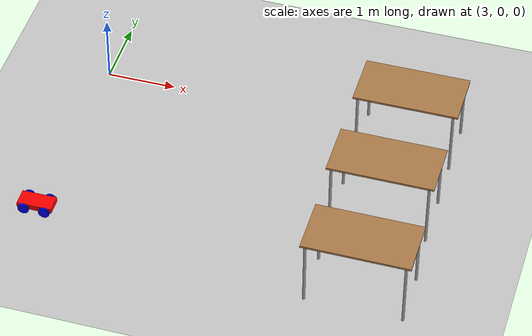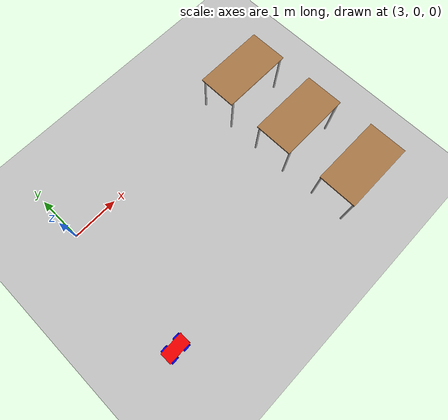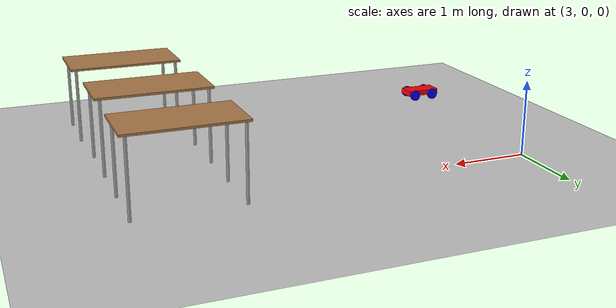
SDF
<sdf version="1.6">
 <world name="default">
  <model name="ground_plane">
   <static>1</static>
   <link name="link">
    <collision name="collision">
     <geometry><plane><normal>0 0 1</normal><size>100 100</size></plane></geometry>
     <surface><friction><ode><mu>100</mu><mu2>50</mu2></ode></friction></surface>
    </collision>
    <visual name="visual">
     <cast_shadows>0</cast_shadows>
     <geometry><plane><normal>0 0 1</normal><size>100 100</size></plane></geometry>
     <material>
      <script><uri>file://media/materials/scripts/gazebo.material</uri><name>Gazebo/Grey</name></script>
     </material>
    </visual>
   </link>
  </model>
  <model name="table_2">
   <static>1</static>
   <link name="link">
    <collision name="surface">
     <pose>0 0 1 0 -0 0</pose>
     <geometry><box><size>1.5 0.8 0.03</size></box></geometry>
     <surface><friction><ode><mu>0.6</mu><mu2>0.6</mu2></ode></friction></surface>
    </collision>
    <visual name="visual1">
     <pose>0 0 1 0 -0 0</pose>
     <geometry><box><size>1.5 0.8 0.03</size></box></geometry>
     <material>
      <script><uri>file://media/materials/scripts/gazebo.material</uri><name>Gazebo/Wood</name></script>
     </material>
    </visual>
    <collision name="front_left_leg">
     <pose>0.68 0.38 0.5 0 -0 0</pose>
     <geometry><cylinder><radius>0.02</radius><length>1</length></cylinder></geometry>
    </collision>
    <visual name="front_left_leg">
     <pose>0.68 0.38 0.5 0 -0 0</pose>
     <geometry><cylinder><radius>0.02</radius><length>1</length></cylinder></geometry>
     <material>
      <script><uri>file://media/materials/scripts/gazebo.material</uri><name>Gazebo/Grey</name></script>
     </material>
    </visual>
    <collision name="front_right_leg">
     <pose>0.68 -0.38 0.5 0 -0 0</pose>
     <geometry><cylinder><radius>0.02</radius><length>1</length></cylinder></geometry>
    </collision>
    <visual name="front_right_leg">
     <pose>0.68 -0.38 0.5 0 -0 0</pose>
     <geometry><cylinder><radius>0.02</radius><length>1</length></cylinder></geometry>
     <material>
      <script><uri>file://media/materials/scripts/gazebo.material</uri><name>Gazebo/Grey</name></script>
     </material>
    </visual>
    <collision name="back_right_leg">
     <pose>-0.68 -0.38 0.5 0 -0 0</pose>
     <geometry><cylinder><radius>0.02</radius><length>1</length></cylinder></geometry>
    </collision>
    <visual name="back_right_leg">
     <pose>-0.68 -0.38 0.5 0 -0 0</pose>
     <geometry><cylinder><radius>0.02</radius><length>1</length></cylinder></geometry>
     <material>
      <script><uri>file://media/materials/scripts/gazebo.material</uri><name>Gazebo/Grey</name></script>
     </material>
    </visual>
    <collision name="back_left_leg">
     <pose>-0.68 0.38 0.5 0 -0 0</pose>
     <geometry><cylinder><radius>0.02</radius><length>1</length></cylinder></geometry>
    </collision>
    <visual name="back_left_leg">
     <pose>-0.68 0.38 0.5 0 -0 0</pose>
     <geometry><cylinder><radius>0.02</radius><length>1</length></cylinder></geometry>
     <material>
      <script><uri>file://media/materials/scripts/gazebo.material</uri><name>Gazebo/Grey</name></script>
     </material>
    </visual>
   </link>
   <pose>7.5511 -0.140414 0 0 -0 0</pose>
  </model>
  <model name="mybot_1">
   <link name="link_0">
    <pose>0 0 0.12 0 -0 0</pose>
    <inertial>
     <mass>1</mass>
     <inertia>
      <ixx>0.166667</ixx>
      <ixy>0</ixy>
      <ixz>0</ixz>
      <iyy>0.166667</iyy>
      <iyz>0</iyz>
      <izz>0.166667</izz>
     </inertia>
    </inertial>
    <visual name="visual">
     <geometry><box><size>0.5 0.25 0.08</size></box></geometry>
     <material>
      <lighting>1</lighting>
      <script><uri>file://media/materials/scripts/gazebo.material</uri><name>Gazebo/Grey</name></script>
      <shader type="pixel"><normal_map>__default__</normal_map></shader>
      <ambient>1 0 0 1</ambient>
      <diffuse>0.7 0.7 0.7 1</diffuse>
      <specular>0.01 0.01 0.01 1</specular>
      <emissive>0 0 0 1</emissive>
     </material>
    </visual>
    <collision name="collision">
     <geometry><box><size>0.5 0.25 0.08</size></box></geometry>
     <surface>
      <friction>
       <ode><mu>1</mu><mu2>1</mu2><fdir1>0 0 0</fdir1><slip1>0</slip1><slip2>0</slip2></ode>
       <torsional>
        <coefficient>1</coefficient>
        <patch_radius>0</patch_radius>
        <surface_radius>0</surface_radius>
        <use_patch_radius>1</use_patch_radius>
        <ode><slip>0</slip></ode>
       </torsional>
      </friction>
      <bounce><restitution_coefficient>0</restitution_coefficient><threshold>1e+06</threshold></bounce>
      <contact>
       <collide_without_contact>0</collide_without_contact>
       <collide_without_contact_bitmask>1</collide_without_contact_bitmask>
       <collide_bitmask>1</collide_bitmask>
       <ode>
        <soft_cfm>0</soft_cfm>
        <soft_erp>0.2</soft_erp>
        <kp>1e+13</kp>
        <kd>1</kd>
        <max_vel>0.01</max_vel>
        <min_depth>0</min_depth>
       </ode>
       <bullet>
        <split_impulse>1</split_impulse>
        <split_impulse_penetration_threshold>-0.01</split_impulse_penetration_threshold>
        <soft_cfm>0</soft_cfm>
        <soft_erp>0.2</soft_erp>
        <kp>1e+13</kp>
        <kd>1</kd>
       </bullet>
      </contact>
     </surface>
    </collision>
   </link>
   <link name="link_1_clone">
    <pose>0.15 0.14 0.09 1.571 -0 0</pose>
    <inertial>
     <mass>1</mass>
     <inertia><ixx>0.145833</ixx><ixy>0</ixy><ixz>0</ixz><iyy>0.145833</iyy><iyz>0</iyz><izz>0.125</izz></inertia>
    </inertial>
    <visual name="visual">
     <geometry><cylinder><radius>0.08</radius><length>0.03</length></cylinder></geometry>
     <material>
      <lighting>1</lighting>
      <script><uri>file://media/materials/scripts/gazebo.material</uri><name>Gazebo/Grey</name></script>
      <shader type="pixel"><normal_map>__default__</normal_map></shader>
      <ambient>0 0 1 1</ambient>
      <diffuse>0.7 0.7 0.7 1</diffuse>
      <specular>0.01 0.01 0.01 1</specular>
      <emissive>0 0 0 1</emissive>
     </material>
    </visual>
    <collision name="collision">
     <geometry><cylinder><radius>0.08</radius><length>0.03</length></cylinder></geometry>
     <surface>
      <friction>
       <ode><mu>1</mu><mu2>1</mu2><fdir1>0 0 0</fdir1><slip1>0</slip1><slip2>0</slip2></ode>
       <torsional>
        <coefficient>1</coefficient>
        <patch_radius>0</patch_radius>
        <surface_radius>0</surface_radius>
        <use_patch_radius>1</use_patch_radius>
        <ode><slip>0</slip></ode>
       </torsional>
      </friction>
      <bounce><restitution_coefficient>0</restitution_coefficient><threshold>1e+06</threshold></bounce>
      <contact>
       <collide_without_contact>0</collide_without_contact>
       <collide_without_contact_bitmask>1</collide_without_contact_bitmask>
       <collide_bitmask>1</collide_bitmask>
       <ode>
        <soft_cfm>0</soft_cfm>
        <soft_erp>0.2</soft_erp>
        <kp>1e+13</kp>
        <kd>1</kd>
        <max_vel>0.01</max_vel>
        <min_depth>0</min_depth>
       </ode>
       <bullet>
        <split_impulse>1</split_impulse>
        <split_impulse_penetration_threshold>-0.01</split_impulse_penetration_threshold>
        <soft_cfm>0</soft_cfm>
        <soft_erp>0.2</soft_erp>
        <kp>1e+13</kp>
        <kd>1</kd>
       </bullet>
      </contact>
     </surface>
    </collision>
   </link>
   <link name="link_1_clone_clone">
    <pose>-0.15 0.14 0.09 1.571 -0 0</pose>
    <inertial>
     <mass>1</mass>
     <inertia><ixx>0.145833</ixx><ixy>0</ixy><ixz>0</ixz><iyy>0.145833</iyy><iyz>0</iyz><izz>0.125</izz></inertia>
    </inertial>
    <visual name="visual">
     <geometry><cylinder><radius>0.08</radius><length>0.03</length></cylinder></geometry>
     <material>
      <lighting>1</lighting>
      <script><uri>file://media/materials/scripts/gazebo.material</uri><name>Gazebo/Grey</name></script>
      <shader type="pixel"><normal_map>__default__</normal_map></shader>
      <ambient>0 0 1 1</ambient>
      <diffuse>0.7 0.7 0.7 1</diffuse>
      <specular>0.01 0.01 0.01 1</specular>
      <emissive>0 0 0 1</emissive>
     </material>
    </visual>
    <collision name="collision">
     <geometry><cylinder><radius>0.08</radius><length>0.03</length></cylinder></geometry>
     <surface>
      <friction>
       <ode><mu>1</mu><mu2>1</mu2><fdir1>0 0 0</fdir1><slip1>0</slip1><slip2>0</slip2></ode>
       <torsional>
        <coefficient>1</coefficient>
        <patch_radius>0</patch_radius>
        <surface_radius>0</surface_radius>
        <use_patch_radius>1</use_patch_radius>
        <ode><slip>0</slip></ode>
       </torsional>
      </friction>
      <bounce><restitution_coefficient>0</restitution_coefficient><threshold>1e+06</threshold></bounce>
      <contact>
       <collide_without_contact>0</collide_without_contact>
       <collide_without_contact_bitmask>1</collide_without_contact_bitmask>
       <collide_bitmask>1</collide_bitmask>
       <ode>
        <soft_cfm>0</soft_cfm>
        <soft_erp>0.2</soft_erp>
        <kp>1e+13</kp>
        <kd>1</kd>
        <max_vel>0.01</max_vel>
        <min_depth>0</min_depth>
       </ode>
       <bullet>
        <split_impulse>1</split_impulse>
        <split_impulse_penetration_threshold>-0.01</split_impulse_penetration_threshold>
        <soft_cfm>0</soft_cfm>
        <soft_erp>0.2</soft_erp>
        <kp>1e+13</kp>
        <kd>1</kd>
       </bullet>
      </contact>
     </surface>
    </collision>
   </link>
   <link name="link_1_clone_clone_0">
    <pose>-0.15 -0.14 0.09 1.571 -0 0</pose>
    <inertial>
     <mass>1</mass>
     <inertia><ixx>0.145833</ixx><ixy>0</ixy><ixz>0</ixz><iyy>0.145833</iyy><iyz>0</iyz><izz>0.125</izz></inertia>
    </inertial>
    <visual name="visual">
     <geometry><cylinder><radius>0.08</radius><length>0.03</length></cylinder></geometry>
     <material>
      <lighting>1</lighting>
      <script><uri>file://media/materials/scripts/gazebo.material</uri><name>Gazebo/Grey</name></script>
      <shader type="pixel"><normal_map>__default__</normal_map></shader>
      <ambient>0 0 1 1</ambient>
      <diffuse>0.7 0.7 0.7 1</diffuse>
      <specular>0.01 0.01 0.01 1</specular>
      <emissive>0 0 0 1</emissive>
     </material>
    </visual>
    <collision name="collision">
     <geometry><cylinder><radius>0.08</radius><length>0.03</length></cylinder></geometry>
     <surface>
      <friction>
       <ode><mu>1</mu><mu2>1</mu2><fdir1>0 0 0</fdir1><slip1>0</slip1><slip2>0</slip2></ode>
       <torsional>
        <coefficient>1</coefficient>
        <patch_radius>0</patch_radius>
        <surface_radius>0</surface_radius>
        <use_patch_radius>1</use_patch_radius>
        <ode><slip>0</slip></ode>
       </torsional>
      </friction>
      <bounce><restitution_coefficient>0</restitution_coefficient><threshold>1e+06</threshold></bounce>
      <contact>
       <collide_without_contact>0</collide_without_contact>
       <collide_without_contact_bitmask>1</collide_without_contact_bitmask>
       <collide_bitmask>1</collide_bitmask>
       <ode>
        <soft_cfm>0</soft_cfm>
        <soft_erp>0.2</soft_erp>
        <kp>1e+13</kp>
        <kd>1</kd>
        <max_vel>0.01</max_vel>
        <min_depth>0</min_depth>
       </ode>
       <bullet>
        <split_impulse>1</split_impulse>
        <split_impulse_penetration_threshold>-0.01</split_impulse_penetration_threshold>
        <soft_cfm>0</soft_cfm>
        <soft_erp>0.2</soft_erp>
        <kp>1e+13</kp>
        <kd>1</kd>
       </bullet>
      </contact>
     </surface>
    </collision>
   </link>
   <link name="link_1_clone_clone_1">
    <pose>0.15 -0.14 0.09 1.571 -0 0</pose>
    <inertial>
     <mass>1</mass>
     <inertia><ixx>0.145833</ixx><ixy>0</ixy><ixz>0</ixz><iyy>0.145833</iyy><iyz>0</iyz><izz>0.125</izz></inertia>
    </inertial>
    <visual name="visual">
     <geometry><cylinder><radius>0.08</radius><length>0.03</length></cylinder></geometry>
     <material>
      <lighting>1</lighting>
      <script><uri>file://media/materials/scripts/gazebo.material</uri><name>Gazebo/Grey</name></script>
      <shader type="pixel"><normal_map>__default__</normal_map></shader>
      <ambient>0 0 1 1</ambient>
      <diffuse>0.7 0.7 0.7 1</diffuse>
      <specular>0.01 0.01 0.01 1</specular>
      <emissive>0 0 0 1</emissive>
     </material>
    </visual>
    <collision name="collision">
     <geometry><cylinder><radius>0.08</radius><length>0.03</length></cylinder></geometry>
     <surface>
      <friction>
       <ode><mu>1</mu><mu2>1</mu2><fdir1>0 0 0</fdir1><slip1>0</slip1><slip2>0</slip2></ode>
       <torsional>
        <coefficient>1</coefficient>
        <patch_radius>0</patch_radius>
        <surface_radius>0</surface_radius>
        <use_patch_radius>1</use_patch_radius>
        <ode><slip>0</slip></ode>
       </torsional>
      </friction>
      <bounce><restitution_coefficient>0</restitution_coefficient><threshold>1e+06</threshold></bounce>
      <contact>
       <collide_without_contact>0</collide_without_contact>
       <collide_without_contact_bitmask>1</collide_without_contact_bitmask>
       <collide_bitmask>1</collide_bitmask>
       <ode>
        <soft_cfm>0</soft_cfm>
        <soft_erp>0.2</soft_erp>
        <kp>1e+13</kp>
        <kd>1</kd>
        <max_vel>0.01</max_vel>
        <min_depth>0</min_depth>
       </ode>
       <bullet>
        <split_impulse>1</split_impulse>
        <split_impulse_penetration_threshold>-0.01</split_impulse_penetration_threshold>
        <soft_cfm>0</soft_cfm>
        <soft_erp>0.2</soft_erp>
        <kp>1e+13</kp>
        <kd>1</kd>
       </bullet>
      </contact>
     </surface>
    </collision>
   </link>
   <joint name="link_0_JOINT_0" type="revolute">
    <parent>link_0</parent>
    <child>link_1_clone</child>
    <axis>
     <xyz>0 0 1</xyz>
     <use_parent_model_frame>0</use_parent_model_frame>
     <limit>
      <lower>-1.79769e+308</lower>
      <upper>1.79769e+308</upper>
      <effort>-1</effort>
      <velocity>-1</velocity>
     </limit>
     <dynamics>
      <spring_reference>0</spring_reference>
      <spring_stiffness>0</spring_stiffness>
      <damping>0</damping>
      <friction>0</friction>
     </dynamics>
    </axis>
    <physics>
     <ode><limit><cfm>0</cfm><erp>0.2</erp></limit><suspension><cfm>0</cfm><erp>0.2</erp></suspension></ode>
    </physics>
   </joint>
   <joint name="link_0_JOINT_1" type="revolute">
    <parent>link_0</parent>
    <child>link_1_clone_clone</child>
    <axis>
     <xyz>0 0 1</xyz>
     <use_parent_model_frame>0</use_parent_model_frame>
     <limit>
      <lower>-1.79769e+308</lower>
      <upper>1.79769e+308</upper>
      <effort>-1</effort>
      <velocity>-1</velocity>
     </limit>
     <dynamics>
      <spring_reference>0</spring_reference>
      <spring_stiffness>0</spring_stiffness>
      <damping>0</damping>
      <friction>0</friction>
     </dynamics>
    </axis>
    <physics>
     <ode><limit><cfm>0</cfm><erp>0.2</erp></limit><suspension><cfm>0</cfm><erp>0.2</erp></suspension></ode>
    </physics>
   </joint>
   <joint name="link_0_JOINT_2" type="revolute">
    <parent>link_0</parent>
    <child>link_1_clone_clone_1</child>
    <axis>
     <xyz>0 0 1</xyz>
     <use_parent_model_frame>0</use_parent_model_frame>
     <limit>
      <lower>-1.79769e+308</lower>
      <upper>1.79769e+308</upper>
      <effort>-1</effort>
      <velocity>-1</velocity>
     </limit>
     <dynamics>
      <spring_reference>0</spring_reference>
      <spring_stiffness>0</spring_stiffness>
      <damping>0</damping>
      <friction>0</friction>
     </dynamics>
    </axis>
    <physics>
     <ode><limit><cfm>0</cfm><erp>0.2</erp></limit><suspension><cfm>0</cfm><erp>0.2</erp></suspension></ode>
    </physics>
   </joint>
   <joint name="link_0_JOINT_3" type="revolute">
    <parent>link_0</parent>
    <child>link_1_clone_clone_0</child>
    <axis>
     <xyz>0 0 1</xyz>
     <use_parent_model_frame>0</use_parent_model_frame>
     <limit>
      <lower>-1.79769e+308</lower>
      <upper>1.79769e+308</upper>
      <effort>-1</effort>
      <velocity>-1</velocity>
     </limit>
     <dynamics>
      <spring_reference>0</spring_reference>
      <spring_stiffness>0</spring_stiffness>
      <damping>0</damping>
      <friction>0</friction>
     </dynamics>
    </axis>
    <physics>
     <ode><limit><cfm>0</cfm><erp>0.2</erp></limit><suspension><cfm>0</cfm><erp>0.2</erp></suspension></ode>
    </physics>
   </joint>
   <static>0</static>
   <pose>2.93136 -2.89288 -0.009997 1e-06 -0 0.007583</pose>
  </model>
  <model name="table_2_clone">
   <static>1</static>
   <link name="link">
    <collision name="surface">
     <pose>0 0 1 0 -0 0</pose>
     <geometry><box><size>1.5 0.8 0.03</size></box></geometry>
     <surface><friction><ode><mu>0.6</mu><mu2>0.6</mu2></ode></friction></surface>
    </collision>
    <visual name="visual1">
     <pose>0 0 1 0 -0 0</pose>
     <geometry><box><size>1.5 0.8 0.03</size></box></geometry>
     <material>
      <script><uri>file://media/materials/scripts/gazebo.material</uri><name>Gazebo/Wood</name></script>
     </material>
    </visual>
    <collision name="front_left_leg">
     <pose>0.68 0.38 0.5 0 -0 0</pose>
     <geometry><cylinder><radius>0.02</radius><length>1</length></cylinder></geometry>
    </collision>
    <visual name="front_left_leg">
     <pose>0.68 0.38 0.5 0 -0 0</pose>
     <geometry><cylinder><radius>0.02</radius><length>1</length></cylinder></geometry>
     <material>
      <script><uri>file://media/materials/scripts/gazebo.material</uri><name>Gazebo/Grey</name></script>
     </material>
    </visual>
    <collision name="front_right_leg">
     <pose>0.68 -0.38 0.5 0 -0 0</pose>
     <geometry><cylinder><radius>0.02</radius><length>1</length></cylinder></geometry>
    </collision>
    <visual name="front_right_leg">
     <pose>0.68 -0.38 0.5 0 -0 0</pose>
     <geometry><cylinder><radius>0.02</radius><length>1</length></cylinder></geometry>
     <material>
      <script><uri>file://media/materials/scripts/gazebo.material</uri><name>Gazebo/Grey</name></script>
     </material>
    </visual>
    <collision name="back_right_leg">
     <pose>-0.68 -0.38 0.5 0 -0 0</pose>
     <geometry><cylinder><radius>0.02</radius><length>1</length></cylinder></geometry>
    </collision>
    <visual name="back_right_leg">
     <pose>-0.68 -0.38 0.5 0 -0 0</pose>
     <geometry><cylinder><radius>0.02</radius><length>1</length></cylinder></geometry>
     <material>
      <script><uri>file://media/materials/scripts/gazebo.material</uri><name>Gazebo/Grey</name></script>
     </material>
    </visual>
    <collision name="back_left_leg">
     <pose>-0.68 0.38 0.5 0 -0 0</pose>
     <geometry><cylinder><radius>0.02</radius><length>1</length></cylinder></geometry>
    </collision>
    <visual name="back_left_leg">
     <pose>-0.68 0.38 0.5 0 -0 0</pose>
     <geometry><cylinder><radius>0.02</radius><length>1</length></cylinder></geometry>
     <material>
      <script><uri>file://media/materials/scripts/gazebo.material</uri><name>Gazebo/Grey</name></script>
     </material>
    </visual>
   </link>
   <pose>7.55675 -1.60309 0 0 -0 0</pose>
  </model>
  <model name="table_2_clone_clone">
   <static>1</static>
   <link name="link">
    <collision name="surface">
     <pose>0 0 1 0 -0 0</pose>
     <geometry><box><size>1.5 0.8 0.03</size></box></geometry>
     <surface><friction><ode><mu>0.6</mu><mu2>0.6</mu2></ode></friction></surface>
    </collision>
    <visual name="visual1">
     <pose>0 0 1 0 -0 0</pose>
     <geometry><box><size>1.5 0.8 0.03</size></box></geometry>
     <material>
      <script><uri>file://media/materials/scripts/gazebo.material</uri><name>Gazebo/Wood</name></script>
     </material>
    </visual>
    <collision name="front_left_leg">
     <pose>0.68 0.38 0.5 0 -0 0</pose>
     <geometry><cylinder><radius>0.02</radius><length>1</length></cylinder></geometry>
    </collision>
    <visual name="front_left_leg">
     <pose>0.68 0.38 0.5 0 -0 0</pose>
     <geometry><cylinder><radius>0.02</radius><length>1</length></cylinder></geometry>
     <material>
      <script><uri>file://media/materials/scripts/gazebo.material</uri><name>Gazebo/Grey</name></script>
     </material>
    </visual>
    <collision name="front_right_leg">
     <pose>0.68 -0.38 0.5 0 -0 0</pose>
     <geometry><cylinder><radius>0.02</radius><length>1</length></cylinder></geometry>
    </collision>
    <visual name="front_right_leg">
     <pose>0.68 -0.38 0.5 0 -0 0</pose>
     <geometry><cylinder><radius>0.02</radius><length>1</length></cylinder></geometry>
     <material>
      <script><uri>file://media/materials/scripts/gazebo.material</uri><name>Gazebo/Grey</name></script>
     </material>
    </visual>
    <collision name="back_right_leg">
     <pose>-0.68 -0.38 0.5 0 -0 0</pose>
     <geometry><cylinder><radius>0.02</radius><length>1</length></cylinder></geometry>
    </collision>
    <visual name="back_right_leg">
     <pose>-0.68 -0.38 0.5 0 -0 0</pose>
     <geometry><cylinder><radius>0.02</radius><length>1</length></cylinder></geometry>
     <material>
      <script><uri>file://media/materials/scripts/gazebo.material</uri><name>Gazebo/Grey</name></script>
     </material>
    </visual>
    <collision name="back_left_leg">
     <pose>-0.68 0.38 0.5 0 -0 0</pose>
     <geometry><cylinder><radius>0.02</radius><length>1</length></cylinder></geometry>
    </collision>
    <visual name="back_left_leg">
     <pose>-0.68 0.38 0.5 0 -0 0</pose>
     <geometry><cylinder><radius>0.02</radius><length>1</length></cylinder></geometry>
     <material>
      <script><uri>file://media/materials/scripts/gazebo.material</uri><name>Gazebo/Grey</name></script>
     </material>
    </visual>
   </link>
   <pose>7.60403 -3.10095 0 0 -0 0</pose>
  </model>
 </world>
</sdf>
